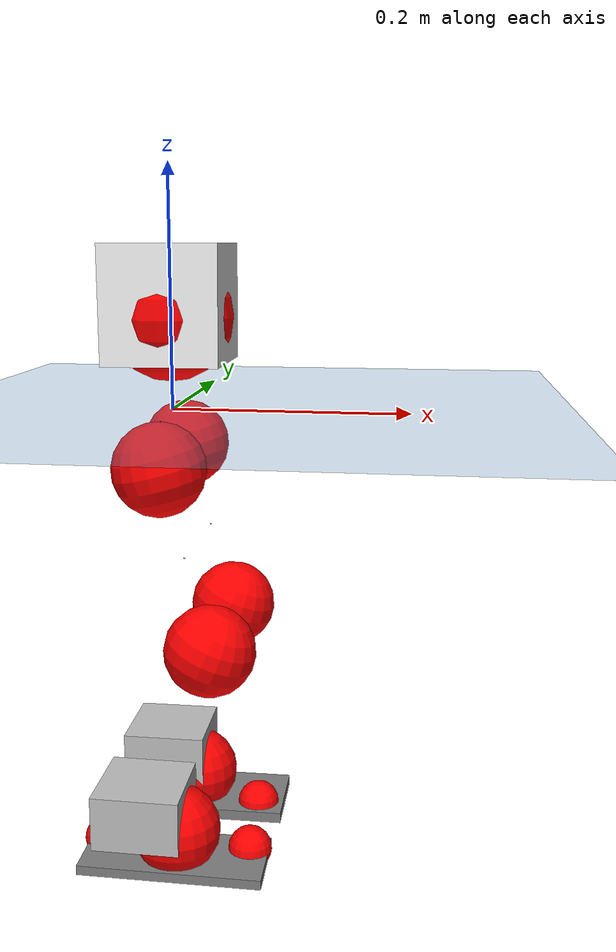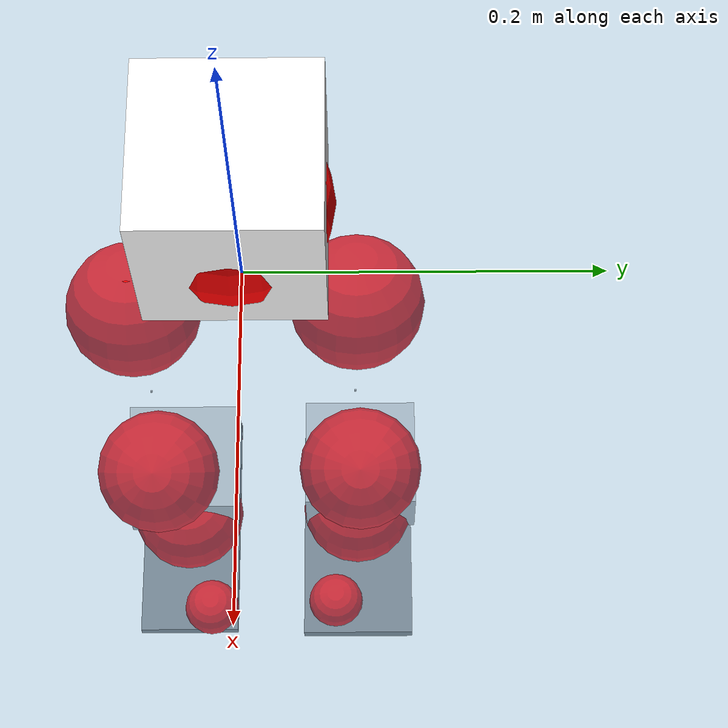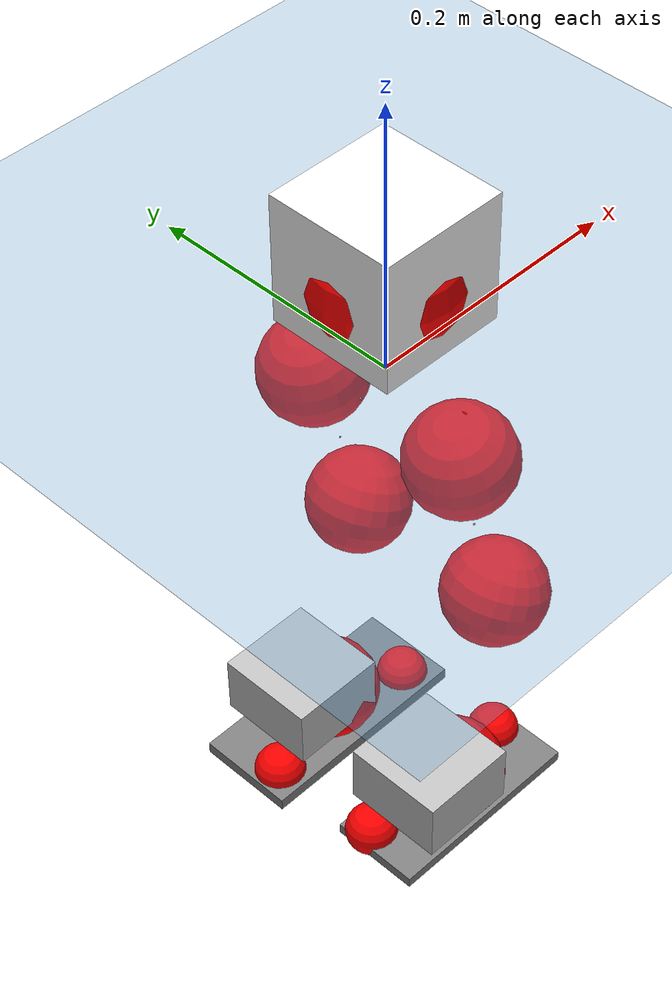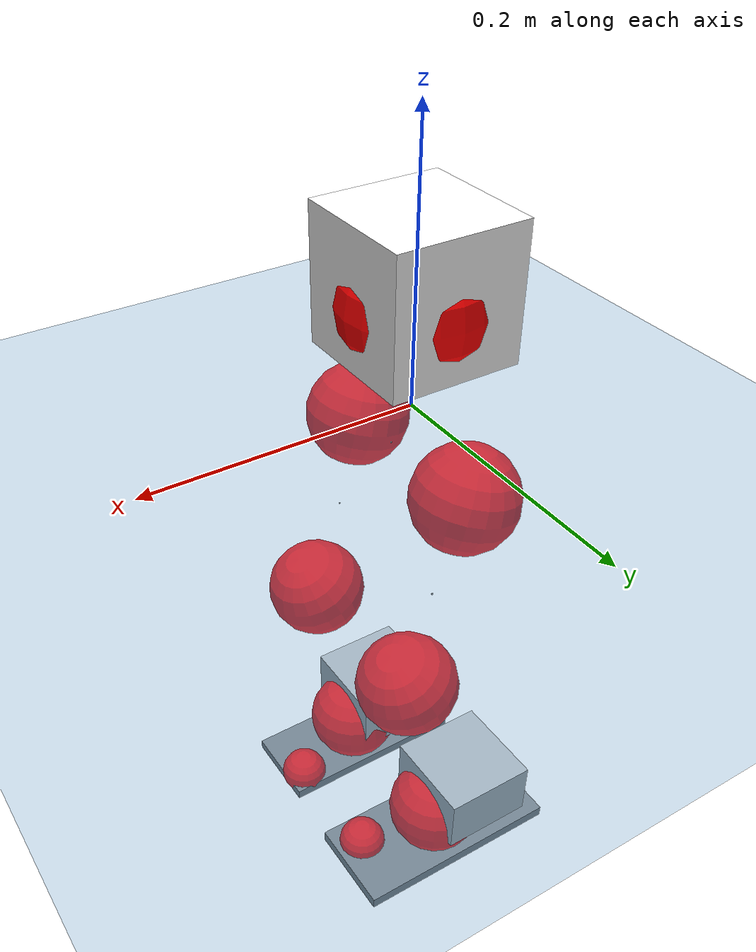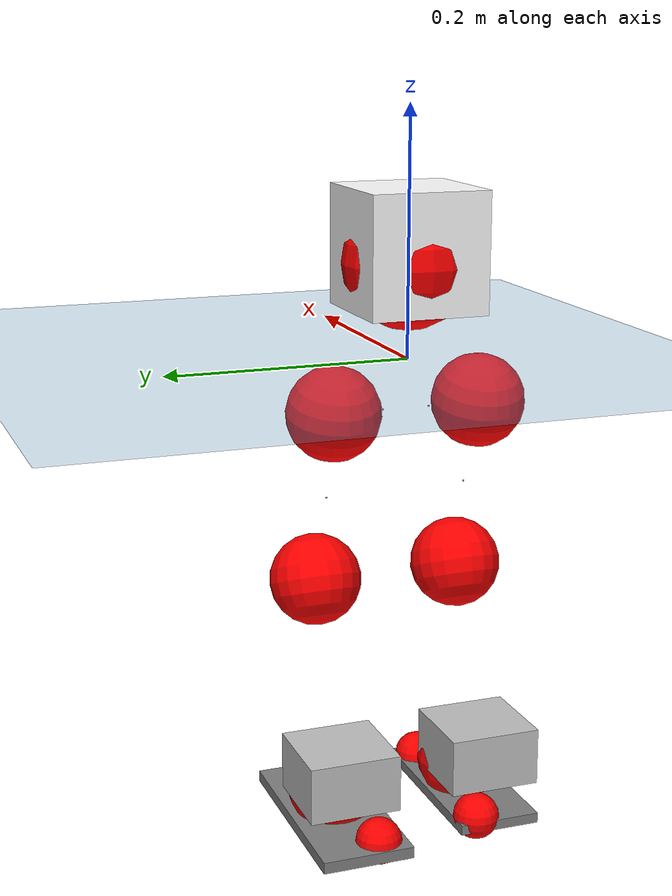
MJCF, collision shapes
<mujoco model="pi_12dof_release_v1">
  <compiler angle="radian" assetdir="assets" balanceinertia="true" inertiafromgeom="false"/>

  <option timestep="0.005" density="1.2" viscosity="2e-05"/>

  <size nkey="1"/>

  <visual>
    <quality shadowsize="8192"/>
    <map shadowclip="0.5"/>
  </visual>

  <default>
    <default class="/">
      <joint armature="0.01" damping="0.01" frictionloss="0.01"/>
      <geom contype="0" conaffinity="0" group="1" solref="-1000 -80"/>
      <site size="0.01 0.005 0.005" group="5"/>
      <general forcelimited="true" biastype="affine" gainprm="20" biasprm="0 -20 -0.5"/>
      <default class="foot">
        <geom size="0.0845 0.036 0.005" type="box" condim="6" group="4" priority="1" friction="0.9 0.2 0.2" solimp="0.015 1 0.005"/>
      </default>
      <default class="reward_collision_sphere">
        <geom group="5" rgba="1 0 0 1"/>
      </default>
    </default>
  </default>

  <asset>
    <texture type="skybox" colorspace="auto" name="//unnamed_texture_0" builtin="gradient" rgb1="0.95 0.95 0.95" rgb2="0.95 0.95 0.95" width="100" height="600"/>
    <texture type="2d" colorspace="auto" name="texplane" builtin="checker" rgb1="0.345 0.575 0.748" rgb2="0.345 0.575 0.748" markrgb="1 1 1" width="512" height="512"/>
    <material name="MatPlane" class="/" texture="texplane" texuniform="true" texrepeat="2 2" specular="0.9"/>
    <mesh name="baselink_1" class="/" file="baselink_1.STL"/>
    <mesh name="r_hip_pitch_link" class="/" file="r_hip_pitch_link.STL"/>
    <mesh name="r_hip_roll_link" class="/" file="r_hip_roll_link.STL"/>
    <mesh name="r_thigh_link" class="/" file="r_thigh_link.STL"/>
    <mesh name="r_calf_link" class="/" file="r_calf_link.STL"/>
    <mesh name="r_ankle_pitch_link" class="/" file="r_ankle_pitch_link.STL"/>
    <mesh name="r_ankle_roll_link" class="/" file="r_ankle_roll_link.STL"/>
    <mesh name="l_hip_pitch_link" class="/" file="l_hip_pitch_link.STL"/>
    <mesh name="l_hip_roll_link" class="/" file="l_hip_roll_link.STL"/>
    <mesh name="l_thigh_link" class="/" file="l_thigh_link.STL"/>
    <mesh name="l_calf_link" class="/" file="l_calf_link.STL"/>
    <mesh name="l_ankle_pitch_link" class="/" file="l_ankle_pitch_link.STL"/>
    <mesh name="l_ankle_roll_link" class="/" file="l_ankle_roll_link.STL"/>
  </asset>

  <worldbody>
    <geom name="floor" class="/" size="100 100 0.125" type="plane" group="0" material="MatPlane"/>
    <light name="toplight_shadow" class="/" pos="0 0 5" dir="0.0990148 0.0990148 -0.990148" type="directional" ambient="0.04 0.04 0.04" diffuse="0.55 0.55 0.55" specular="0.12 0.12 0.12"/>
    <light name="toplight_fill" class="/" pos="0 0 5" dir="0.0990148 0.0990148 -0.990148" type="directional" castshadow="false" ambient="0.04 0.04 0.04" diffuse="0.3 0.3 0.3" specular="0.08 0.08 0.08"/>
    <body name="trunk" pos="-4.80876e-05 0.000119027 -0.00243926" quat="1 5.06961e-05 0.000210515 -0.000104116">
      <inertial pos="0.00184545 0.00250236 0.0483292" quat="0.695064 0.0100086 0.00908599 0.718821" mass="1.88214" diaginertia="0.00816037 0.00286392 0.00762019"/>
      <joint name="//unnamed_joint_0" type="free"/>
      <geom name="//unnamed_geom_1" class="/" type="mesh" density="0" rgba="1 1 1 1" mesh="baselink_1"/>
      <geom name="//unnamed_geom_2" class="/" size="0.0481907 0.0481907 0.0481907" pos="0 0 0.0906253" type="box" rgba="1 1 1 1"/>
      <geom name="//unnamed_geom_3" class="reward_collision_sphere" size="0.0530098" pos="0 0 0.0792971"/>
      <site name="imu" class="/" pos="-0.000345744 -0.00779844 0.000896794" size="0.00963815"/>
      <camera name="track" class="/" pos="0 -1.59618 0" quat="0.707107 0.707107 0 0" mode="trackcom"/>
      <camera name="ego_camera" class="/" pos="0.0720402 0 0.203907" quat="-0.5 -0.5 0.5 0.5"/>
      <body name="r_hip_pitch_link" pos="0.00191936 -0.0198631 -0.037981" quat="0.992198 0.000105015 -0.124672 0.00018484">
        <inertial pos="-0.0018101 -0.0437832 -0.00110759" quat="-0.0148161 0.704655 -0.0302891 0.708749" mass="0.336521" diaginertia="8.91714e-05 3.13828e-05 0.000159291"/>
        <joint name="r_hip_pitch_joint" class="/" pos="0 0 0" axis="-0.00823317 -0.999927 -0.00883462" stiffness="0.0100643" range="-1.73121 1.20337" armature="0.00881362" damping="0.00450292" frictionloss="0.00839102"/>
        <geom name="//unnamed_geom_4" class="/" type="mesh" density="0" rgba="0.75294 0.75294 0.75294 1" mesh="r_hip_pitch_link"/>
        <geom name="//unnamed_geom_5" class="/" size="0.000481907 0.000481907 0.000481907" type="box" rgba="0.75294 0.75294 0.75294 1"/>
        <body name="r_hip_roll_link" pos="0.00077108 -0.0436608 0.00129851" quat="1 5.47397e-05 5.00862e-05 -0.000112838">
          <inertial pos="-0.00153283 -4.8029e-05 -0.071273" quat="0.705278 -0.0799677 -0.0815486 0.69967" mass="0.332308" diaginertia="0.000272679 8.9834e-05 0.000224036"/>
          <joint name="r_hip_roll_joint" class="/" pos="0 0 0" axis="-0.999921 -0.00622579 -0.0108929" range="-0.12286 0.507747" armature="0.0101377" damping="0.0132702" frictionloss="0.0104507"/>
          <geom name="//unnamed_geom_6" class="/" type="mesh" density="0" rgba="0.75294 0.75294 0.75294 1" mesh="r_hip_roll_link"/>
          <geom name="//unnamed_geom_7" class="/" size="0.000481907 0.000481907 0.000481907" type="box" rgba="0.75294 0.75294 0.75294 1"/>
          <geom name="//unnamed_geom_8" class="reward_collision_sphere" size="0.0385526"/>
          <body name="r_thigh_link" pos="-0.000186704 0.00304016 -0.0758494" quat="0.999999 -0.00056285 0.00113482 0.000533397">
            <inertial pos="-0.000163644 0.000746219 -0.0544083" quat="0.737264 0.675604 3.86494e-06 -6.41166e-05" mass="0.0975639" diaginertia="0.000102144 3.00286e-05 0.000104403"/>
            <joint name="r_thigh_joint" class="/" pos="0 0 0" axis="0.000134567 3.57192e-05 -1" range="-0.303973 0.546354" armature="0.010977" damping="0.00396371" frictionloss="0.00987406"/>
            <geom name="//unnamed_geom_9" class="/" type="mesh" density="0" rgba="0.75294 0.75294 0.75294 1" mesh="r_thigh_link"/>
            <geom name="//unnamed_geom_10" class="/" size="0.000481907 0.000481907 0.000481907" type="box" rgba="0.75294 0.75294 0.75294 1"/>
            <body name="r_calf_link" pos="0.00101161 -0.00294363 -0.0809676" quat="0.947242 -0.000179782 0.320518 -0.000519811">
              <inertial pos="-0.000682231 -0.00178371 -0.077979" quat="0.999984 -0.00303843 0.000183361 0.00467466" mass="0.699501" diaginertia="0.0027847 0.0010777 0.000325194"/>
              <joint name="r_calf_joint" class="/" pos="0 0 0" axis="-0.00666815 -0.999899 -0.0125255" stiffness="0.0110986" range="-1.66426 0.643316" armature="0.00950422" damping="0.00954682" frictionloss="0.00991481"/>
              <geom name="//unnamed_geom_11" class="/" type="mesh" density="0" rgba="0.75294 0.75294 0.75294 1" mesh="r_calf_link"/>
              <geom name="//unnamed_geom_12" class="/" size="0.000481907 0.000481907 0.000481907" type="box" rgba="0.75294 0.75294 0.75294 1"/>
              <geom name="//unnamed_geom_13" class="reward_collision_sphere" size="0.0385526"/>
              <body name="r_ankle_pitch_link" pos="0.00295706 0.00240019 -0.158185" quat="0.980098 -0.0001142 -0.198512 7.75731e-05">
                <inertial pos="0.00467978 0.0039443 -0.000290794" quat="0.00240263 0.706726 -0.00246614 0.707479" mass="0.159817" diaginertia="0.000250255 7.33374e-05 0.000227143"/>
                <joint name="r_ankle_pitch_joint" class="/" pos="0 0 0" axis="-0.0011038 -0.999996 -0.00251449" range="-1.34022 0.517125" armature="0.00981358" damping="0.023712" frictionloss="0.0109751"/>
                <geom name="//unnamed_geom_14" class="/" type="mesh" density="0" rgba="0.75294 0.75294 0.75294 1" mesh="r_ankle_pitch_link"/>
                <geom name="//unnamed_geom_15" class="/" size="0.0375888 0.0385526 0.0240954" type="box" rgba="0.75294 0.75294 0.75294 1"/>
                <body name="r_ankle_roll_link" pos="0.0755989 0.00222498 0.0017911" quat="1 0.000336551 7.23201e-06 0.000393904">
                  <inertial pos="-0.0233781 0.00101189 -0.013865" quat="0.558091 0.431793 0.433481 0.560521" mass="0.450363" diaginertia="0.000944046 0.000330885 0.000523557"/>
                  <joint name="r_ankle_roll_joint" class="/" pos="0 0 0" axis="-0.999994 -0.000776297 -0.00330327" range="-0.166226 0.171672" armature="0.00960372" damping="0.00832978" frictionloss="0.0108064"/>
                  <geom name="//unnamed_geom_16" class="/" type="mesh" density="0" rgba="0.75294 0.75294 0.75294 1" mesh="r_ankle_roll_link"/>
                  <geom name="//unnamed_geom_17" class="/" type="mesh" rgba="0.75294 0.75294 0.75294 1" mesh="r_ankle_roll_link"/>
                  <geom name="right_foot" class="foot" size="0.0798029 0.0345502 0.00425906" pos="-0.0489873 0 -0.0498439"/>
                  <geom name="//unnamed_geom_19" class="reward_collision_sphere" size="0.0385526" pos="-0.0480268 0 -0.0226563"/>
                  <geom name="//unnamed_geom_20" class="reward_collision_sphere" size="0.0192763" pos="0.014408 0.0159618 -0.0453126"/>
                  <geom name="//unnamed_geom_21" class="reward_collision_sphere" size="0.0192763" pos="-0.115264 0.0159618 -0.0453126"/>
                  <site name="right_foot" class="foot" pos="-0.0489873 0 -0.0498439" size="0.00963815"/>
                </body>
              </body>
            </body>
          </body>
        </body>
      </body>
      <body name="l_hip_pitch_link" pos="-0.000673495 0.0207686 -0.0372345" quat="0.992181 -0.000475131 -0.124803 -3.92471e-05">
        <inertial pos="-0.000218928 0.0401554 -0.0012924" quat="-0.037403 0.712573 0.0252908 0.700144" mass="0.339498" diaginertia="0.000104901 3.50003e-05 0.000186277"/>
        <joint name="l_hip_pitch_joint" class="/" pos="0 0 0" axis="-0.00182004 0.999996 -0.00205349" range="-1.19431 1.69671" armature="0.0106019" damping="0.0180357" frictionloss="0.00830866"/>
        <geom name="//unnamed_geom_22" class="/" type="mesh" density="0" rgba="0.75294 0.75294 0.75294 1" mesh="l_hip_pitch_link"/>
        <geom name="//unnamed_geom_23" class="/" size="0.000481907 0.000481907 0.000481907" type="box" rgba="0.75294 0.75294 0.75294 1"/>
        <body name="l_hip_roll_link" pos="-0.000775673 0.0420691 0.000366237" quat="1 0.000126252 -0.000432645 2.34539e-05">
          <inertial pos="-0.000364676 -0.00244179 -0.0692121" quat="0.698915 -0.0751184 -0.0794883 0.706793" mass="0.347404" diaginertia="0.000285484 9.10707e-05 0.000251389"/>
          <joint name="l_hip_roll_joint" class="/" pos="0 0 0" axis="-0.999999 0.00121634 -0.00047777" range="-0.453727 0.0644746" armature="0.0093253" damping="0.00610237" frictionloss="0.00935428"/>
          <geom name="//unnamed_geom_24" class="/" type="mesh" density="0" rgba="0.75294 0.75294 0.75294 1" mesh="l_hip_roll_link"/>
          <geom name="//unnamed_geom_25" class="/" size="0.000481907 0.000481907 0.000481907" type="box" rgba="0.75294 0.75294 0.75294 1"/>
          <geom name="//unnamed_geom_26" class="reward_collision_sphere" size="0.0385526"/>
          <body name="l_thigh_link" pos="0.0021219 -0.00132862 -0.0782472" quat="0.999999 -0.000532563 -0.00125911 -0.000433871">
            <inertial pos="0.00298315 -0.00142737 -0.0562142" quat="0.675338 0.737508 -0.00011184 0.000218042" mass="0.100002" diaginertia="0.000105374 3.25521e-05 0.000113921"/>
            <joint name="l_thigh_joint" class="/" pos="0 0 0" axis="-0.00480851 6.14344e-05 -0.999988" stiffness="0.000751281" range="-0.615702 0.244199" armature="0.00934424" damping="0.0196022" frictionloss="0.00845662"/>
            <geom name="//unnamed_geom_27" class="/" type="mesh" density="0" rgba="0.75294 0.75294 0.75294 1" mesh="l_thigh_link"/>
            <geom name="//unnamed_geom_28" class="/" size="0.000481907 0.000481907 0.000481907" type="box" rgba="0.75294 0.75294 0.75294 1"/>
            <body name="l_calf_link" pos="0.000472319 0.00287891 -0.079021" quat="0.947809 -0.000630194 0.318837 0.00120418">
              <inertial pos="-0.000728207 0.00347268 -0.0806296" quat="0.999892 0.00908185 0.00998221 0.00584058" mass="0.714666" diaginertia="0.00287082 0.00108596 0.000316245"/>
              <joint name="l_calf_joint" class="/" pos="0 0 0" axis="-0.00575454 0.999982 -0.00179224" stiffness="0.00316218" range="-0.668271 1.63083" armature="0.00942421" damping="0.00361072" frictionloss="0.00862648"/>
              <geom name="//unnamed_geom_29" class="/" type="mesh" density="0" rgba="0.75294 0.75294 0.75294 1" mesh="l_calf_link"/>
              <geom name="//unnamed_geom_30" class="/" size="0.000481907 0.000481907 0.000481907" type="box" rgba="0.75294 0.75294 0.75294 1"/>
              <geom name="//unnamed_geom_31" class="reward_collision_sphere" size="0.0385526"/>
              <body name="l_ankle_pitch_link" pos="0.000491276 6.64791e-05 -0.160685" quat="0.98011 9.20972e-05 -0.198454 -0.00039998">
                <inertial pos="0.00458668 0.00151874 0.00147054" quat="0.00855907 0.711614 -0.00246381 0.702515" mass="0.153657" diaginertia="0.000244214 6.9285e-05 0.000218593"/>
                <joint name="l_ankle_pitch_joint" class="/" pos="0 0 0" axis="-0.000355266 0.999901 -0.0140457" range="-0.517726 1.3124" armature="0.0098942" damping="0" frictionloss="0.0100874"/>
                <geom name="//unnamed_geom_32" class="/" type="mesh" density="0" rgba="0.75294 0.75294 0.75294 1" mesh="l_ankle_pitch_link"/>
                <geom name="//unnamed_geom_33" class="/" size="0.0375888 0.0385526 0.0240954" type="box" rgba="0.75294 0.75294 0.75294 1"/>
                <body name="l_ankle_roll_link" pos="0.0732588 -0.0019919 -6.915e-06" quat="0.999999 -0.000797852 -0.001018 8.81055e-05">
                  <inertial pos="-0.0231954 -0.000677672 -0.0160782" quat="0.560912 0.435258 0.440995 0.549046" mass="0.441415" diaginertia="0.000898794 0.000330468 0.000534919"/>
                  <joint name="l_ankle_roll_joint" class="/" pos="0 0 0" axis="-0.999934 -0.00825886 0.0079305" range="-0.145346 0.108428" armature="0.0094505" damping="0.00423327" frictionloss="0.00851318"/>
                  <geom name="//unnamed_geom_34" class="/" type="mesh" density="0" rgba="0.75294 0.75294 0.75294 1" mesh="l_ankle_roll_link"/>
                  <geom name="//unnamed_geom_35" class="/" type="mesh" rgba="0.75294 0.75294 0.75294 1" mesh="l_ankle_roll_link"/>
                  <geom name="left_foot" class="foot" size="0.0869471 0.0387081 0.00485477" pos="-0.0489873 0 -0.0498439"/>
                  <geom name="//unnamed_geom_37" class="reward_collision_sphere" size="0.0385526" pos="-0.0480268 0 -0.0226563"/>
                  <geom name="//unnamed_geom_38" class="reward_collision_sphere" size="0.0192763" pos="0.014408 -0.0159618 -0.0453126"/>
                  <geom name="//unnamed_geom_39" class="reward_collision_sphere" size="0.0192763" pos="-0.115264 -0.0159618 -0.0453126"/>
                  <site name="left_foot" class="foot" pos="-0.0489873 0 -0.0498439" size="0.00963815"/>
                </body>
              </body>
            </body>
          </body>
        </body>
      </body>
    </body>
  </worldbody>

  <contact>
    <pair class="/" geom1="floor" geom2="right_foot" name="//unnamed_contact_1"/>
    <pair class="/" geom1="floor" geom2="left_foot" name="//unnamed_contact_0"/>
  </contact>

  <actuator>
    <general name="r_hip_pitch_joint" class="/" joint="r_hip_pitch_joint" forcerange="-18.4392 18.4392" gainprm="19.1361" biasprm="0 -19.1361 -0.475776"/>
    <general name="r_hip_roll_joint" class="/" joint="r_hip_roll_joint" forcerange="-20.2498 20.2498" gainprm="19.1361" biasprm="0 -19.1361 -0.475776"/>
    <general name="r_thigh_joint" class="/" joint="r_thigh_joint" forcerange="-18.8191 18.8191" gainprm="19.1361" biasprm="0 -19.1361 -0.475776"/>
    <general name="r_calf_joint" class="/" joint="r_calf_joint" forcerange="-20.0869 20.0869" gainprm="19.1361" biasprm="0 -19.1361 -0.475776"/>
    <general name="r_ankle_pitch_joint" class="/" joint="r_ankle_pitch_joint" forcerange="-21.8152 21.8152" gainprm="19.1361" biasprm="0 -19.1361 -0.475776"/>
    <general name="r_ankle_roll_joint" class="/" joint="r_ankle_roll_joint" forcerange="-22.3343 22.3343" gainprm="19.1361" biasprm="0 -19.1361 -0.475776"/>
    <general name="l_hip_pitch_joint" class="/" joint="l_hip_pitch_joint" forcerange="-19.0715 19.0715" gainprm="19.1361" biasprm="0 -19.1361 -0.475776"/>
    <general name="l_hip_roll_joint" class="/" joint="l_hip_roll_joint" forcerange="-18.4462 18.4462" gainprm="19.1361" biasprm="0 -19.1361 -0.475776"/>
    <general name="l_thigh_joint" class="/" joint="l_thigh_joint" forcerange="-19.6463 19.6463" gainprm="19.1361" biasprm="0 -19.1361 -0.475776"/>
    <general name="l_calf_joint" class="/" joint="l_calf_joint" forcerange="-20.5891 20.5891" gainprm="19.1361" biasprm="0 -19.1361 -0.475776"/>
    <general name="l_ankle_pitch_joint" class="/" joint="l_ankle_pitch_joint" forcerange="-20.1286 20.1286" gainprm="19.1361" biasprm="0 -19.1361 -0.475776"/>
    <general name="l_ankle_roll_joint" class="/" joint="l_ankle_roll_joint" forcerange="-19.4849 19.4849" gainprm="19.1361" biasprm="0 -19.1361 -0.475776"/>
  </actuator>

  <sensor>
    <gyro site="imu" name="imu_angular_velocity"/>
    <velocimeter site="imu" name="imu_linear_velocity"/>
    <framelinvel objtype="site" objname="left_foot" name="left_foot_global_linear_velocity"/>
    <framelinvel objtype="site" objname="right_foot" name="right_foot_global_linear_velocity"/>
  </sensor>

  <keyframe>
    <key name="home" qpos="0 0 0.291 1 0 0 0 0.4 0 0 -0.8 0.4 0 -0.4 0 0 0.8 -0.4 0"/>
  </keyframe>
</mujoco>
